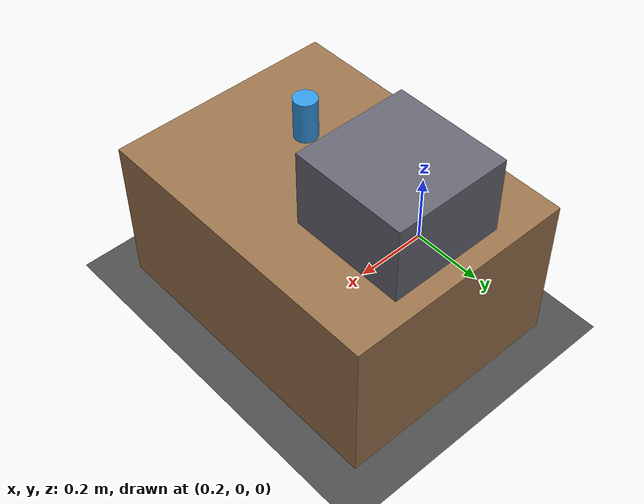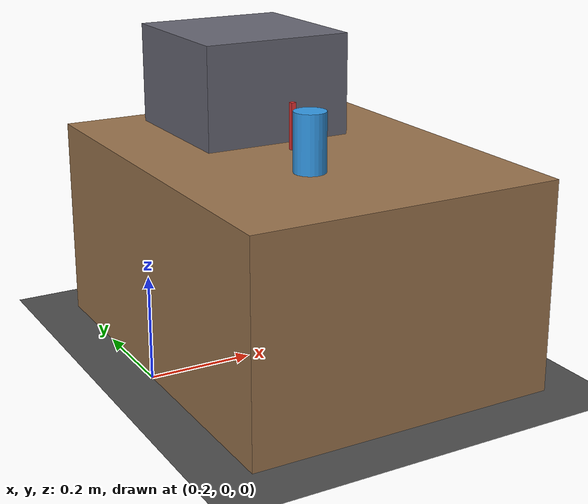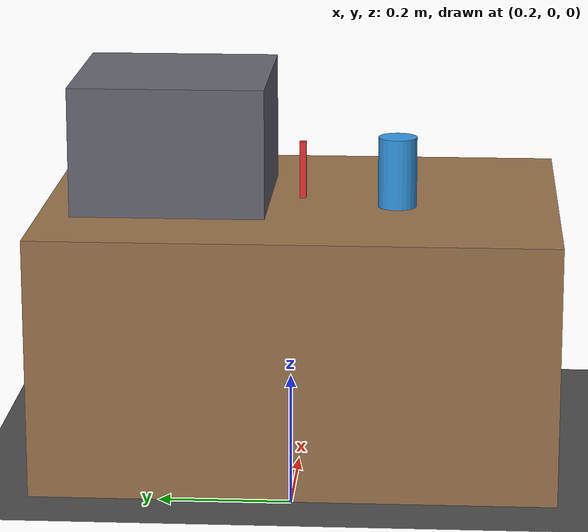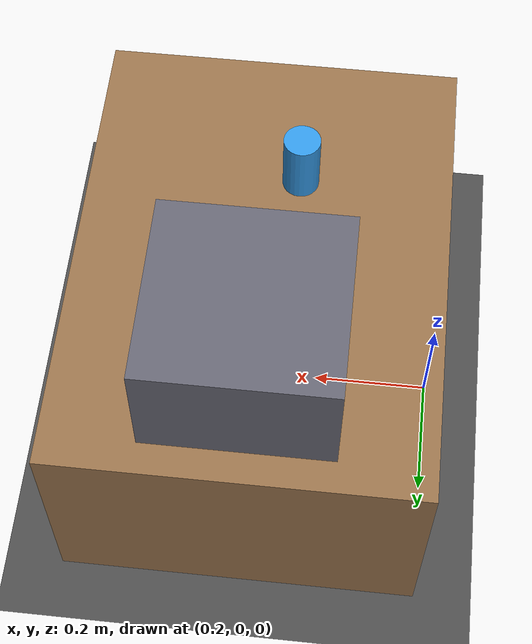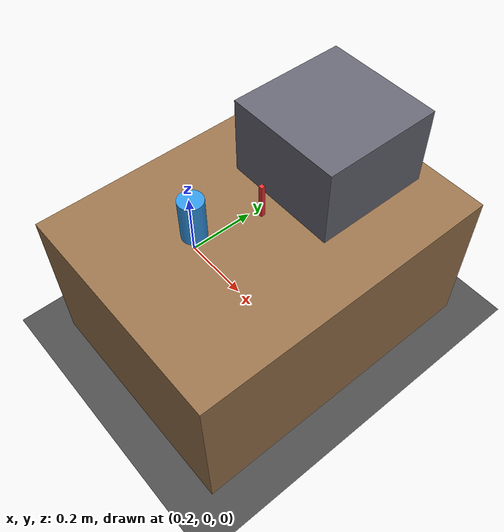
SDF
<?xml version="1.0" ?>
<sdf version="1.8">
  <world name="fogaze_table">
    <plugin filename="ignition-gazebo-physics-system"
            name="ignition::gazebo::systems::Physics"/>
    <plugin filename="ignition-gazebo-user-commands-system"
            name="ignition::gazebo::systems::UserCommands"/>
    <plugin filename="ignition-gazebo-scene-broadcaster-system"
            name="ignition::gazebo::systems::SceneBroadcaster"/>

    <light type="directional" name="sun">
      <cast_shadows>true</cast_shadows>
      <pose>0 0 10 0 0 0</pose>
      <diffuse>0.9 0.9 0.9 1</diffuse>
      <direction>-0.3 0.2 -0.9</direction>
    </light>

    <model name="ground_plane">
      <static>true</static>
      <link name="link">
        <collision name="c"><geometry><plane>
          <normal>0 0 1</normal><size>20 20</size>
        </plane></geometry></collision>
        <visual name="v"><geometry><plane>
          <normal>0 0 1</normal><size>20 20</size>
        </plane></geometry>
          <material><ambient>0.3 0.3 0.3 1</ambient></material>
        </visual>
      </link>
    </model>

    <!-- Table top (0.4 m high) -->
    <model name="table">
      <static>true</static>
      <pose>0.5 0 0.2 0 0 0</pose>
      <link name="link">
        <collision name="c"><geometry><box><size>0.6 0.8 0.4</size></box></geometry></collision>
        <visual name="v"><geometry><box><size>0.6 0.8 0.4</size></box></geometry>
          <material><ambient>0.6 0.45 0.3 1</ambient></material>
        </visual>
      </link>
    </model>

    <!-- Graspable: a can (~6 cm) -->
    <model name="can">
      <pose>0.45 -0.15 0.45 0 0 0</pose>
      <link name="link">
        <inertial><mass>0.2</mass></inertial>
        <collision name="c"><geometry><cylinder><radius>0.03</radius><length>0.12</length></cylinder></geometry></collision>
        <visual name="v"><geometry><cylinder><radius>0.03</radius><length>0.12</length></cylinder></geometry>
          <material><ambient>0.2 0.6 0.9 1</ambient></material>
        </visual>
      </link>
    </model>

    <!-- Too thin: a pen (~1 cm) -->
    <model name="pen">
      <pose>0.5 0.0 0.42 0 0 0</pose>
      <link name="link">
        <inertial><mass>0.02</mass></inertial>
        <collision name="c"><geometry><box><size>0.01 0.01 0.14</size></box></geometry></collision>
        <visual name="v"><geometry><box><size>0.01 0.01 0.14</size></box></geometry>
          <material><ambient>0.9 0.2 0.2 1</ambient></material>
        </visual>
      </link>
    </model>

    <!-- Too wide for the gripper: a 30 cm box -->
    <model name="big_box">
      <pose>0.5 0.2 0.5 0 0 0</pose>
      <link name="link">
        <inertial><mass>1.0</mass></inertial>
        <collision name="c"><geometry><box><size>0.3 0.3 0.2</size></box></geometry></collision>
        <visual name="v"><geometry><box><size>0.3 0.3 0.2</size></box></geometry>
          <material><ambient>0.4 0.4 0.45 1</ambient></material>
        </visual>
      </link>
    </model>
  </world>
</sdf>
